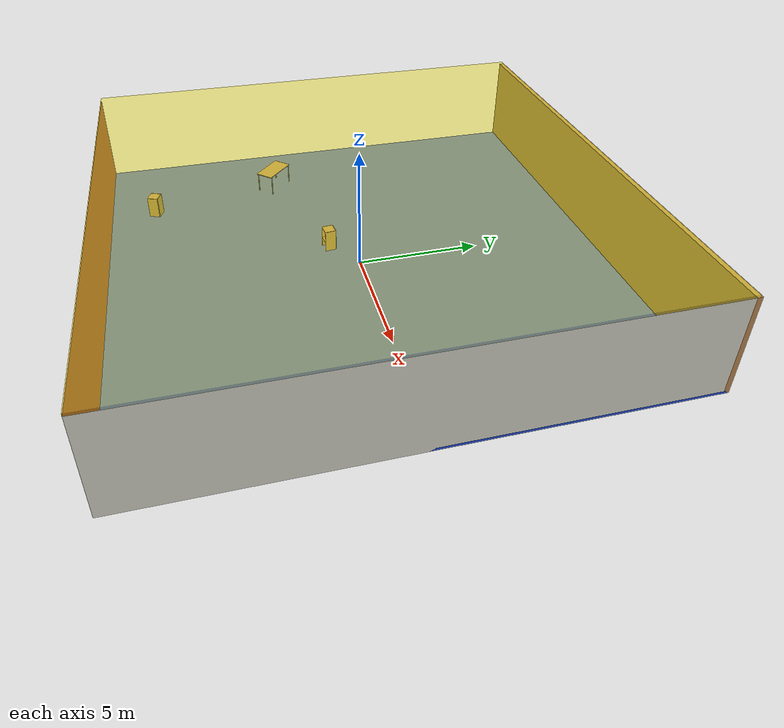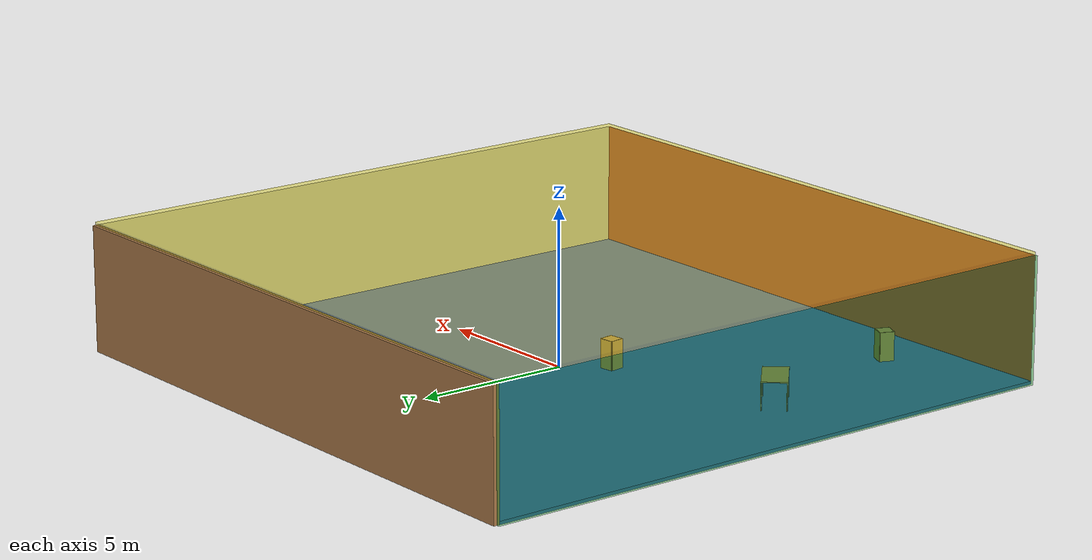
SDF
<sdf version="1.4">
 <world name="default">
  <physics type="ode">
   <max_step_size>0.001</max_step_size>
   <real_time_factor>1</real_time_factor>
   <real_time_update_rate>1000</real_time_update_rate>
   <gravity>0 0 -9.8</gravity>
  </physics>
  <scene><ambient>0.4 0.4 0.4 1</ambient><background>0.7 0.7 0.7 1</background><shadows>1</shadows></scene>
  <model name="Surrounding">
   <static>1</static>
   <link name="Ceiling">
    <collision name="Ceiling_Collision"><geometry><box><size>20 20 0.1</size></box></geometry></collision>
    <visual name="Ceiling_Visual">
     <geometry><box><size>20 20 0.1</size></box></geometry>
     <material>
      <script>
       <uri>file://media/materials/scripts/gazebo.material</uri>
       <name>Gazebo/YellowTransparent</name>
      </script>
     </material>
    </visual>
    <pose>0 0 4.05 0 0 0</pose>
   </link>
   <link name="Wall_South">
    <collision name="Wall_South_Collision">
     <geometry><box><size>20 0 4</size></box></geometry>
     <pose>0 0 2 0 -0 0</pose>
    </collision>
    <visual name="Wall_South_Visual">
     <pose>0 0 2 0 -0 0</pose>
     <geometry><box><size>20 0 4</size></box></geometry>
     <material>
      <script><uri>file://media/materials/scripts/gazebo.material</uri><name>Gazebo/RedGlow</name></script>
     </material>
    </visual>
    <velocity_decay><linear>0</linear><angular>0</angular></velocity_decay>
    <pose>0 -10 0 0 -0 0</pose>
   </link>
   <link name="Wall_East">
    <collision name="Wall_21_Collision">
     <geometry><box><size>20 0 4</size></box></geometry>
     <pose>0 0 2 0 -0 0</pose>
    </collision>
    <visual name="Wall_21_Visual">
     <pose>0 0 2 0 -0 0</pose>
     <geometry><box><size>20 0 4</size></box></geometry>
     <material>
      <script><uri>file://media/materials/scripts/gazebo.material</uri><name>Gazebo/PaintedWall</name></script>
     </material>
    </visual>
    <velocity_decay><linear>0</linear><angular>0</angular></velocity_decay>
    <pose>10 0 0 0 -0 1.5708</pose>
   </link>
   <link name="Wall_North">
    <collision name="Wall_22_Collision">
     <geometry><box><size>20 0.2 4</size></box></geometry>
     <pose>0 0 2 0 -0 0</pose>
    </collision>
    <visual name="Wall_22_Visual">
     <pose>0 0 2 0 -0 0</pose>
     <geometry><box><size>20 0.2 4</size></box></geometry>
     <material>
      <script><uri>file://media/materials/scripts/gazebo.material</uri><name>Gazebo/WoodFloor</name></script>
     </material>
    </visual>
    <velocity_decay><linear>0</linear><angular>0</angular></velocity_decay>
    <pose>0 10 0 0 -0 0</pose>
   </link>
   <link name="Wall_West">
    <collision name="Wall_23_Collision">
     <geometry><box><size>20 0.2 4</size></box></geometry>
     <pose>0 0 2 0 -0 0</pose>
    </collision>
    <visual name="Wall_23_Visual">
     <pose>0 0 2 0 -0 0</pose>
     <geometry><box><size>20 0.2 4</size></box></geometry>
     <material>
      <script><uri>file://media/materials/scripts/gazebo.material</uri><name>Gazebo/GreenTransparent</name></script>
     </material>
    </visual>
    <velocity_decay><linear>0</linear><angular>0</angular></velocity_decay>
    <pose>-10 0 0 0 0 -1.5708</pose>
   </link>
   <link name="Ground_link">
    <collision name="collision">
     <pose>0 0 .05 0 -0 0</pose>
     <geometry><box><size>20 20 0.1</size></box></geometry>
    </collision>
    <visual name="visual">
     <pose>0 0 .05 0 -0 0</pose>
     <geometry><box><size>20 20 0.1</size></box></geometry>
     <material>
      <script><uri>file://media/materials/scripts/gazebo.material</uri><name>Gazebo/Blue</name></script>
     </material>
    </visual>
   </link>
   <static>1</static>
  </model>
  <spherical_coordinates>
   <surface_model>EARTH_WGS84</surface_model>
   <latitude_deg>0</latitude_deg>
   <longitude_deg>0</longitude_deg>
   <elevation>0</elevation>
   <heading_deg>0</heading_deg>
  </spherical_coordinates>
  <light name="lightball_0" type="diffuse">
   <diffuse>0.8 0.8 0.8 1</diffuse>
   <specular>0.2 0.2 0.2 1</specular>
   <attenuation>
    <range>100</range>
    <constant>0.7</constant>
    <linear>0.01</linear>
    <quadratic>0.001</quadratic>
   </attenuation>
   <direction>-0.5 0.1 -0.9</direction>
   <pose>-6.67828877169 -9.58913235395 1.17657682617 0 0 0</pose>
  </light>
  <light name="lightball_1" type="diffuse">
   <diffuse>0.8 0.8 0.8 1</diffuse>
   <specular>0.2 0.2 0.2 1</specular>
   <attenuation>
    <range>100</range>
    <constant>0.7</constant>
    <linear>0.01</linear>
    <quadratic>0.001</quadratic>
   </attenuation>
   <direction>-0.5 0.1 -0.9</direction>
   <pose>7.54589220989 -3.62186808926 3.11188109835 0 0 0</pose>
  </light>
  <light name="lightball_2" type="diffuse">
   <diffuse>0.8 0.8 0.8 1</diffuse>
   <specular>0.2 0.2 0.2 1</specular>
   <attenuation>
    <range>100</range>
    <constant>0.7</constant>
    <linear>0.01</linear>
    <quadratic>0.001</quadratic>
   </attenuation>
   <direction>-0.5 0.1 -0.9</direction>
   <pose>7.6282857359 -9.63517005817 3.20260495593 0 0 0</pose>
  </light>
  <light name="lightball_3" type="diffuse">
   <diffuse>0.8 0.8 0.8 1</diffuse>
   <specular>0.2 0.2 0.2 1</specular>
   <attenuation>
    <range>100</range>
    <constant>0.7</constant>
    <linear>0.01</linear>
    <quadratic>0.001</quadratic>
   </attenuation>
   <direction>-0.5 0.1 -0.9</direction>
   <pose>2.33577734189 4.2394535252 3.54465590973 0 0 0</pose>
  </light>
  <light name="lightball_4" type="diffuse">
   <diffuse>0.8 0.8 0.8 1</diffuse>
   <specular>0.2 0.2 0.2 1</specular>
   <attenuation>
    <range>100</range>
    <constant>0.7</constant>
    <linear>0.01</linear>
    <quadratic>0.001</quadratic>
   </attenuation>
   <direction>-0.5 0.1 -0.9</direction>
   <pose>-3.16047849713 0.359380719428 3.02077397977 0 0 0</pose>
  </light>
  <light name="lightball_5" type="diffuse">
   <diffuse>0.8 0.8 0.8 1</diffuse>
   <specular>0.2 0.2 0.2 1</specular>
   <attenuation>
    <range>100</range>
    <constant>0.7</constant>
    <linear>0.01</linear>
    <quadratic>0.001</quadratic>
   </attenuation>
   <direction>-0.5 0.1 -0.9</direction>
   <pose>-9.84376073429 -8.62994051005 1.04519120521 0 0 0</pose>
  </light>
  <light name="lightball_6" type="diffuse">
   <diffuse>0.8 0.8 0.8 1</diffuse>
   <specular>0.2 0.2 0.2 1</specular>
   <attenuation>
    <range>100</range>
    <constant>0.7</constant>
    <linear>0.01</linear>
    <quadratic>0.001</quadratic>
   </attenuation>
   <direction>-0.5 0.1 -0.9</direction>
   <pose>1.96373867935 4.03242552855 3.55427808111 0 0 0</pose>
  </light>
  <light name="lightball_7" type="diffuse">
   <diffuse>0.8 0.8 0.8 1</diffuse>
   <specular>0.2 0.2 0.2 1</specular>
   <attenuation>
    <range>100</range>
    <constant>0.7</constant>
    <linear>0.01</linear>
    <quadratic>0.001</quadratic>
   </attenuation>
   <direction>-0.5 0.1 -0.9</direction>
   <pose>5.58903490047 -9.19952581118 1.5036736742 0 0 0</pose>
  </light>
  <light name="lightball_8" type="diffuse">
   <diffuse>0.8 0.8 0.8 1</diffuse>
   <specular>0.2 0.2 0.2 1</specular>
   <attenuation>
    <range>100</range>
    <constant>0.7</constant>
    <linear>0.01</linear>
    <quadratic>0.001</quadratic>
   </attenuation>
   <direction>-0.5 0.1 -0.9</direction>
   <pose>2.661806259 4.7435666235 1.29067703467 0 0 0</pose>
  </light>
  <light name="lightball_9" type="diffuse">
   <diffuse>0.8 0.8 0.8 1</diffuse>
   <specular>0.2 0.2 0.2 1</specular>
   <attenuation>
    <range>100</range>
    <constant>0.7</constant>
    <linear>0.01</linear>
    <quadratic>0.001</quadratic>
   </attenuation>
   <direction>-0.5 0.1 -0.9</direction>
   <pose>-5.25640106524 -7.33431250711 1.91183731497 0 0 0</pose>
  </light>
  <light name="lightball_10" type="diffuse">
   <diffuse>0.8 0.8 0.8 1</diffuse>
   <specular>0.2 0.2 0.2 1</specular>
   <attenuation>
    <range>100</range>
    <constant>0.7</constant>
    <linear>0.01</linear>
    <quadratic>0.001</quadratic>
   </attenuation>
   <direction>-0.5 0.1 -0.9</direction>
   <pose>4.63332491289 -9.68411628501 1.32881725833 0 0 0</pose>
  </light>
  <light name="lightball_11" type="diffuse">
   <diffuse>0.8 0.8 0.8 1</diffuse>
   <specular>0.2 0.2 0.2 1</specular>
   <attenuation>
    <range>100</range>
    <constant>0.7</constant>
    <linear>0.01</linear>
    <quadratic>0.001</quadratic>
   </attenuation>
   <direction>-0.5 0.1 -0.9</direction>
   <pose>-0.978984964099 -4.62168698869 2.23436556649 0 0 0</pose>
  </light>
  <light name="lightball_12" type="diffuse">
   <diffuse>0.8 0.8 0.8 1</diffuse>
   <specular>0.2 0.2 0.2 1</specular>
   <attenuation>
    <range>100</range>
    <constant>0.7</constant>
    <linear>0.01</linear>
    <quadratic>0.001</quadratic>
   </attenuation>
   <direction>-0.5 0.1 -0.9</direction>
   <pose>-0.997885861645 5.53813326577 3.3533187424 0 0 0</pose>
  </light>
  <include><uri>model://table</uri><pose>-6.94278644745 -2.55058636979 0 0 0 2.39453064582</pose></include>
  <include><uri>model://cabinet</uri><pose>-5.67334651264 -8.07058549214 0 0 0 1.17725893837</pose></include>
  <include><uri>model://cabinet</uri><pose>-1.23772338129 -1.03420196382 0 0 0 1.69497897827</pose></include>
 </world>
</sdf>

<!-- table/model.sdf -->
<sdf version="1.5">
  <model name="table">
    <static>true</static>
    <link name="link">
      <collision name="surface">
        <pose>0 0 1.0 0 0 0</pose>
        <geometry>
          <box>
            <size>1.5 0.8 0.03</size>
          </box>
        </geometry>
        <surface>
          <friction>
            <ode>
              <mu>0.6</mu>
              <mu2>0.6</mu2>
            </ode>
          </friction>
        </surface>
      </collision>
      <visual name="visual1">
        <pose>0 0 1.0 0 0 0</pose>
        <geometry>
          <box>
            <size>1.5 0.8 0.03</size>
          </box>
        </geometry>
        <material>
          <script>
            <uri>model://media/materials/scripts/gazebo.material</uri>
            <name>Gazebo/Wood</name>
          </script>
        </material>
      </visual>
      <collision name="front_left_leg">
        <pose>0.68 0.38 0.5 0 0 0</pose>
        <geometry>
          <cylinder>
            <radius>0.02</radius>
            <length>1.0</length>
          </cylinder>
        </geometry>
      </collision>
      <visual name="front_left_leg">
        <pose>0.68 0.38 0.5 0 0 0</pose>
        <geometry>
          <cylinder>
            <radius>0.02</radius>
            <length>1.0</length>
          </cylinder>
        </geometry>
        <material>
          <script>
            <uri>model://media/materials/scripts/gazebo.material</uri>
            <name>Gazebo/Grey</name>
          </script>
        </material>
      </visual>
      <collision name="front_right_leg">
        <pose>0.68 -0.38 0.5 0 0 0</pose>
        <geometry>
          <cylinder>
            <radius>0.02</radius>
            <length>1.0</length>
          </cylinder>
        </geometry>
      </collision>
      <visual name="front_right_leg">
        <pose>0.68 -0.38 0.5 0 0 0</pose>
        <geometry>
          <cylinder>
            <radius>0.02</radius>
            <length>1.0</length>
          </cylinder>
        </geometry>
        <material>
          <script>
            <uri>model://media/materials/scripts/gazebo.material</uri>
            <name>Gazebo/Grey</name>
          </script>
        </material>
      </visual>
      <collision name="back_right_leg">
        <pose>-0.68 -0.38 0.5 0 0 0</pose>
        <geometry>
          <cylinder>
            <radius>0.02</radius>
            <length>1.0</length>
          </cylinder>
        </geometry>
      </collision>
      <visual name="back_right_leg">
        <pose>-0.68 -0.38 0.5 0 0 0</pose>
        <geometry>
          <cylinder>
            <radius>0.02</radius>
            <length>1.0</length>
          </cylinder>
        </geometry>
        <material>
          <script>
            <uri>model://media/materials/scripts/gazebo.material</uri>
            <name>Gazebo/Grey</name>
          </script>
        </material>
      </visual>
      <collision name="back_left_leg">
        <pose>-0.68 0.38 0.5 0 0 0</pose>
        <geometry>
          <cylinder>
            <radius>0.02</radius>
            <length>1.0</length>
          </cylinder>
        </geometry>
      </collision>
      <visual name="back_left_leg">
        <pose>-0.68 0.38 0.5 0 0 0</pose>
        <geometry>
          <cylinder>
            <radius>0.02</radius>
            <length>1.0</length>
          </cylinder>
        </geometry>
        <material>
          <script>
            <uri>model://media/materials/scripts/gazebo.material</uri>
            <name>Gazebo/Grey</name>
          </script>
        </material>
      </visual>
    </link>
  </model>
</sdf>

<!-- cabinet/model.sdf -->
<sdf version="1.5">
  <model name="cabinet">
    <static>true</static>
    <link name="cabinet_bottom_plate">
      <inertial>
        <pose>0 0 -1 0 0 0</pose>
        <inertia>
          <ixx>2.050000</ixx>
          <ixy>0</ixy>
          <ixz>0</ixz>
          <iyy>2.050000</iyy>
          <iyz>0</iyz>
          <izz>2.050000</izz>
        </inertia>
        <mass>25.000000</mass>
      </inertial>
      <collision name="cabinet_bottom_plate_geom">
        <pose>0 0 0.010000 0 0 0</pose>
        <geometry>
          <box>
            <size>0.450000 0.450000 0.020000</size>
          </box>
        </geometry>
      </collision>
      <visual name="cabinet_bottom_plate_geom_visual">
        <pose>0 0 0.010000 0 0 0</pose>
        <geometry>
          <box>
            <size>0.450000 0.450000 0.020000</size>
          </box>
        </geometry>
        <material>
          <script>
            <uri>model://media/materials/scripts/gazebo.material</uri>
            <name>Gazebo/Wood</name>
          </script>
        </material>
      </visual>
      <collision name="cabinet_bottom_plate_geom_cabinet_back_plate">
        <pose>0.235000 0 0.510000 0 0 0</pose>
        <geometry>
          <box>
            <size>0.020000 0.450000 1.020000</size>
          </box>
        </geometry>
      </collision>
      <visual name="cabinet_bottom_plate_geom_cabinet_back_plate_visual">
        <pose>0.235000 0 0.510000 0 0 0</pose>
        <geometry>
          <box>
            <size>0.020000 0.450000 1.020000</size>
          </box>
        </geometry>
        <material>
          <script>
            <uri>model://media/materials/scripts/gazebo.material</uri>
            <name>Gazebo/Wood</name>
          </script>
        </material>
      </visual>
      <collision name="cabinet_bottom_plate_geom_cabinet_left_plate">
        <pose>0 0.235000 0.510000 0 0 0</pose>
        <geometry>
          <box>
            <size>0.450000 0.020000 1.020000</size>
          </box>
        </geometry>
      </collision>
      <visual name="cabinet_bottom_plate_geom_cabinet_left_plate_visual">
        <pose>0 0.235000 0.510000 0 0 0</pose>
        <geometry>
          <box>
            <size>0.450000 0.020000 1.020000</size>
          </box>
        </geometry>
        <material>
          <script>
            <uri>model://media/materials/scripts/gazebo.material</uri>
            <name>Gazebo/Wood</name>
          </script>
        </material>
      </visual>
      <collision name="cabinet_bottom_plate_geom_cabinet_middle_plate">
        <pose>0 0 0.510000 0 0 0</pose>
        <geometry>
          <box>
            <size>0.450000 0.450000 0.020000</size>
          </box>
        </geometry>
      </collision>
      <visual name="cabinet_bottom_plate_geom_cabinet_middle_plate_visual">
        <pose>0 0 0.510000 0 0 0</pose>
        <geometry>
          <box>
            <size>0.450000 0.450000 0.020000</size>
          </box>
        </geometry>
        <material>
          <script>
            <uri>model://media/materials/scripts/gazebo.material</uri>
            <name>Gazebo/Wood</name>
          </script>
        </material>
      </visual>
      <collision name="cabinet_bottom_plate_geom_cabinet_right_plate">
        <pose>0 -0.235000 0.510000 0 0 0</pose>
        <geometry>
          <box>
            <size>0.450000 0.020000 1.020000</size>
          </box>
        </geometry>
      </collision>
      <visual name="cabinet_bottom_plate_geom_cabinet_right_plate_visual">
        <pose>0 -0.235000 0.510000 0 0 0</pose>
        <geometry>
          <box>
            <size>0.450000 0.020000 1.020000</size>
          </box>
        </geometry>
        <material>
          <script>
            <uri>model://media/materials/scripts/gazebo.material</uri>
            <name>Gazebo/Wood</name>
          </script>
        </material>
      </visual>
      <collision name="cabinet_bottom_plate_geom_cabinet_top_plate">
        <pose>0 0 1.010000 0 0 0</pose>
        <geometry>
          <box>
            <size>0.450000 0.450000 0.020000</size>
          </box>
        </geometry>
      </collision>
      <visual name="cabinet_bottom_plate_geom_cabinet_top_plate_visual">
        <pose>0 0 1.010000 0 0 0</pose>
        <geometry>
          <box>
            <size>0.450000 0.450000 0.020000</size>
          </box>
        </geometry>
        <material>
          <script>
            <uri>model://media/materials/scripts/gazebo.material</uri>
            <name>Gazebo/Wood</name>
          </script>
        </material>
      </visual>
    </link>
  </model>
</sdf>
